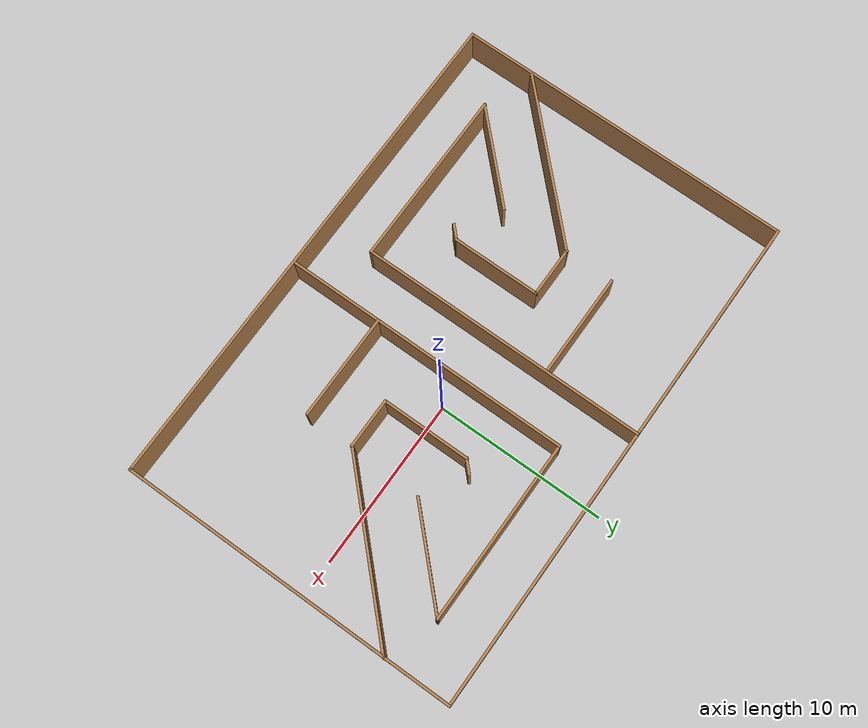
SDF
<?xml version='1.0'?>
<sdf version='1.6'>
  <model name='office_maze'>
    <pose frame=''>-2.7374 -0.716491 0 0 -0 0</pose>
    <link name='Wall_2'>
      <collision name='Wall_2_Collision'>
        <geometry>
          <box>
            <size>30 0.15 2.5</size>
          </box>
        </geometry>
        <pose frame=''>0 0 1.25 0 -0 0</pose>
      </collision>
      <visual name='Wall_2_Visual'>
        <pose frame=''>0 0 1.25 0 -0 0</pose>
        <geometry>
          <box>
            <size>30 0.15 2.5</size>
          </box>
        </geometry>
        <material>
          <script>
            <uri>file://media/materials/scripts/gazebo.material</uri>
            <name>Gazebo/Wood</name>
          </script>
          <ambient>1 1 1 1</ambient>
        </material>
      </visual>
      <pose frame=''>-0.01144 9.925 0 0 -0 0</pose>
    </link>
    <link name='Wall_24'>
      <collision name='Wall_24_Collision'>
        <geometry>
          <box>
            <size>17 0.15 2.5</size>
          </box>
        </geometry>
        <pose frame=''>0 0 1.25 0 -0 0</pose>
      </collision>
      <visual name='Wall_24_Visual'>
        <pose frame=''>0 0 1.25 0 -0 0</pose>
        <geometry>
          <box>
            <size>17 0.15 2.5</size>
          </box>
        </geometry>
        <material>
          <script>
            <uri>file://media/materials/scripts/gazebo.material</uri>
            <name>Gazebo/Wood</name>
          </script>
          <ambient>1 1 1 1</ambient>
        </material>
      </visual>
      <pose frame=''>1.30871 -1.38174 0 0 0 -1.5708</pose>
    </link>
    <link name='Wall_26'>
      <collision name='Wall_26_Collision'>
        <geometry>
          <box>
            <size>17 0.15 2.5</size>
          </box>
        </geometry>
        <pose frame=''>0 0 1.25 0 -0 0</pose>
      </collision>
      <visual name='Wall_26_Visual'>
        <pose frame=''>0 0 1.25 0 -0 0</pose>
        <geometry>
          <box>
            <size>17 0.15 2.5</size>
          </box>
        </geometry>
        <material>
          <script>
            <uri>file://media/materials/scripts/gazebo.material</uri>
            <name>Gazebo/Wood</name>
          </script>
          <ambient>1 1 1 1</ambient>
        </material>
      </visual>
      <pose frame=''>-1.5178 1.48266 0 0 0 -1.5708</pose>
    </link>
    <link name='Wall_27'>
      <collision name='Wall_27_Collision'>
        <geometry>
          <box>
            <size>10.5 0.15 2.5</size>
          </box>
        </geometry>
        <pose frame=''>0 0 1.25 0 -0 0</pose>
      </collision>
      <visual name='Wall_27_Visual'>
        <pose frame=''>0 0 1.25 0 -0 0</pose>
        <geometry>
          <box>
            <size>10.5 0.15 2.5</size>
          </box>
        </geometry>
        <material>
          <script>
            <uri>file://media/materials/scripts/gazebo.material</uri>
            <name>Gazebo/Wood</name>
          </script>
          <ambient>1 1 1 1</ambient>
        </material>
      </visual>
      <pose frame=''>-6.6928 -6.94234 0 0 -0 3.14159</pose>
    </link>
    <link name='Wall_29'>
      <collision name='Wall_29_Collision'>
        <geometry>
          <box>
            <size>10.75 0.15 2.5</size>
          </box>
        </geometry>
        <pose frame=''>0 0 1.25 0 -0 0</pose>
      </collision>
      <visual name='Wall_29_Visual'>
        <pose frame=''>0 0 1.25 0 -0 0</pose>
        <geometry>
          <box>
            <size>10.75 0.15 2.5</size>
          </box>
        </geometry>
        <material>
          <script>
            <uri>file://media/materials/scripts/gazebo.material</uri>
            <name>Gazebo/Wood</name>
          </script>
          <ambient>1 1 1 1</ambient>
        </material>
      </visual>
      <pose frame=''>6.60871 7.04326 0 0 -0 0</pose>
    </link>
    <link name='Wall_3'>
      <collision name='Wall_3_Collision'>
        <geometry>
          <box>
            <size>20 0.15 2.5</size>
          </box>
        </geometry>
        <pose frame=''>0 0 1.25 0 -0 0</pose>
      </collision>
      <visual name='Wall_3_Visual'>
        <pose frame=''>0 0 1.25 0 -0 0</pose>
        <geometry>
          <box>
            <size>20 0.15 2.5</size>
          </box>
        </geometry>
        <material>
          <script>
            <uri>file://media/materials/scripts/gazebo.material</uri>
            <name>Gazebo/Wood</name>
          </script>
          <ambient>1 1 1 1</ambient>
        </material>
      </visual>
      <pose frame=''>14.9136 0 0 0 0 -1.5708</pose>
    </link>
    <link name='Wall_4'>
      <collision name='Wall_4_Collision'>
        <geometry>
          <box>
            <size>30 0.15 2.5</size>
          </box>
        </geometry>
        <pose frame=''>0 0 1.25 0 -0 0</pose>
      </collision>
      <visual name='Wall_4_Visual'>
        <pose frame=''>0 0 1.25 0 -0 0</pose>
        <geometry>
          <box>
            <size>30 0.15 2.5</size>
          </box>
        </geometry>
        <material>
          <script>
            <uri>file://media/materials/scripts/gazebo.material</uri>
            <name>Gazebo/Wood</name>
          </script>
          <ambient>1 1 1 1</ambient>
        </material>
      </visual>
      <pose frame=''>-0.01144 -9.925 0 0 -0 3.14159</pose>
    </link>
    <link name='Wall_41'>
      <collision name='Wall_41_Collision'>
        <geometry>
          <box>
            <size>6.25 0.15 2.5</size>
          </box>
        </geometry>
        <pose frame=''>0 0 1.25 0 -0 0</pose>
      </collision>
      <visual name='Wall_41_Visual'>
        <pose frame=''>0 0 1.25 0 -0 0</pose>
        <geometry>
          <box>
            <size>6.25 0.15 2.5</size>
          </box>
        </geometry>
        <material>
          <script>
            <uri>file://media/materials/scripts/gazebo.material</uri>
            <name>Gazebo/Wood</name>
          </script>
          <ambient>1 1 1 1</ambient>
        </material>
      </visual>
      <pose frame=''>-9.71112 -4.78567 0 0 -0 0.785398</pose>
    </link>
    <link name='Wall_44'>
      <collision name='Wall_44_Collision'>
        <geometry>
          <box>
            <size>10.5 0.15 2.5</size>
          </box>
        </geometry>
        <pose frame=''>0 0 1.25 0 -0 0</pose>
      </collision>
      <visual name='Wall_44_Visual'>
        <pose frame=''>0 0 1.25 0 -0 0</pose>
        <geometry>
          <box>
            <size>10.5 0.15 2.5</size>
          </box>
        </geometry>
        <material>
          <script>
            <uri>file://media/materials/scripts/gazebo.material</uri>
            <name>Gazebo/Wood</name>
          </script>
          <ambient>1 1 1 1</ambient>
        </material>
      </visual>
      <pose frame=''>-11.1784 -2.2224 0 0 -0 0.785398</pose>
    </link>
    <link name='Wall_46'>
      <collision name='Wall_46_Collision'>
        <geometry>
          <box>
            <size>3 0.15 2.5</size>
          </box>
        </geometry>
        <pose frame=''>0 0 1.25 0 -0 0</pose>
      </collision>
      <visual name='Wall_46_Visual'>
        <pose frame=''>0 0 1.25 0 -0 0</pose>
        <geometry>
          <box>
            <size>3 0.15 2.5</size>
          </box>
        </geometry>
        <material>
          <script>
            <uri>file://media/materials/scripts/gazebo.material</uri>
            <name>Gazebo/Wood</name>
          </script>
          <ambient>1 1 1 1</ambient>
        </material>
      </visual>
      <pose frame=''>-6.09409 1.43687 0 0 -0 0</pose>
    </link>
    <link name='Wall_47'>
      <collision name='Wall_47_Collision'>
        <geometry>
          <box>
            <size>5.25 0.15 2.5</size>
          </box>
        </geometry>
        <pose frame=''>0 0 1.25 0 -0 0</pose>
      </collision>
      <visual name='Wall_47_Visual'>
        <pose frame=''>0 0 1.25 0 -0 0</pose>
        <geometry>
          <box>
            <size>5.25 0.15 2.5</size>
          </box>
        </geometry>
        <material>
          <script>
            <uri>file://media/materials/scripts/gazebo.material</uri>
            <name>Gazebo/Wood</name>
          </script>
          <ambient>1 1 1 1</ambient>
        </material>
      </visual>
      <pose frame=''>-4.66909 -1.11313 0 0 0 -1.5708</pose>
    </link>
    <link name='Wall_5'>
      <collision name='Wall_5_Collision'>
        <geometry>
          <box>
            <size>20 0.15 2.5</size>
          </box>
        </geometry>
        <pose frame=''>0 0 1.25 0 -0 0</pose>
      </collision>
      <visual name='Wall_5_Visual'>
        <pose frame=''>0 0 1.25 0 -0 0</pose>
        <geometry>
          <box>
            <size>20 0.15 2.5</size>
          </box>
        </geometry>
        <material>
          <script>
            <uri>file://media/materials/scripts/gazebo.material</uri>
            <name>Gazebo/Wood</name>
          </script>
          <ambient>1 1 1 1</ambient>
        </material>
      </visual>
      <pose frame=''>-14.9364 0 0 0 -0 1.5708</pose>
    </link>
    <link name='Wall_52'>
      <collision name='Wall_52_Collision'>
        <geometry>
          <box>
            <size>1 0.15 2.5</size>
          </box>
        </geometry>
        <pose frame=''>0 0 1.25 0 -0 0</pose>
      </collision>
      <visual name='Wall_52_Visual'>
        <pose frame=''>0 0 1.25 0 -0 0</pose>
        <geometry>
          <box>
            <size>1 0.15 2.5</size>
          </box>
        </geometry>
        <material>
          <script>
            <uri>file://media/materials/scripts/gazebo.material</uri>
            <name>Gazebo/Wood</name>
          </script>
          <ambient>1 1 1 1</ambient>
        </material>
      </visual>
      <pose frame=''>-4.96961 -3.96365 0 0 0 -2.35619</pose>
    </link>
    <link name='Wall_58'>
      <collision name='Wall_58_Collision'>
        <geometry>
          <box>
            <size>6 0.15 2.5</size>
          </box>
        </geometry>
        <pose frame=''>0 0 1.25 0 -0 0</pose>
      </collision>
      <visual name='Wall_58_Visual'>
        <pose frame=''>0 0 1.25 0 -0 0</pose>
        <geometry>
          <box>
            <size>6 0.15 2.5</size>
          </box>
        </geometry>
        <material>
          <script>
            <uri>file://media/materials/scripts/gazebo.material</uri>
            <name>Gazebo/Wood</name>
          </script>
          <ambient>1 1 1 1</ambient>
        </material>
      </visual>
      <pose frame=''>-4.59409 4.28687 0 0 -0 0</pose>
    </link>
    <link name='Wall_61'>
      <collision name='Wall_61_Collision'>
        <geometry>
          <box>
            <size>6.25 0.15 2.5</size>
          </box>
        </geometry>
        <pose frame=''>0 0 1.25 0 -0 0</pose>
      </collision>
      <visual name='Wall_61_Visual'>
        <pose frame=''>0 0 1.25 0 -0 0</pose>
        <geometry>
          <box>
            <size>6.25 0.15 2.5</size>
          </box>
        </geometry>
        <material>
          <script>
            <uri>file://media/materials/scripts/gazebo.material</uri>
            <name>Gazebo/Wood</name>
          </script>
          <ambient>1 1 1 1</ambient>
        </material>
      </visual>
      <pose frame=''>9.75204 4.88659 0 0 0 -2.35619</pose>
    </link>
    <link name='Wall_65'>
      <collision name='Wall_65_Collision'>
        <geometry>
          <box>
            <size>10.75 0.15 2.5</size>
          </box>
        </geometry>
        <pose frame=''>0 0 1.25 0 -0 0</pose>
      </collision>
      <visual name='Wall_65_Visual'>
        <pose frame=''>0 0 1.25 0 -0 0</pose>
        <geometry>
          <box>
            <size>10.75 0.15 2.5</size>
          </box>
        </geometry>
        <material>
          <script>
            <uri>file://media/materials/scripts/gazebo.material</uri>
            <name>Gazebo/Wood</name>
          </script>
          <ambient>1 1 1 1</ambient>
        </material>
      </visual>
      <pose frame=''>11.1577 2.20911 0 0 0 -2.35619</pose>
    </link>
    <link name='Wall_67'>
      <collision name='Wall_67_Collision'>
        <geometry>
          <box>
            <size>3 0.15 2.5</size>
          </box>
        </geometry>
        <pose frame=''>0 0 1.25 0 -0 0</pose>
      </collision>
      <visual name='Wall_67_Visual'>
        <pose frame=''>0 0 1.25 0 -0 0</pose>
        <geometry>
          <box>
            <size>3 0.15 2.5</size>
          </box>
        </geometry>
        <material>
          <script>
            <uri>file://media/materials/scripts/gazebo.material</uri>
            <name>Gazebo/Wood</name>
          </script>
          <ambient>1 1 1 1</ambient>
        </material>
      </visual>
      <pose frame=''>5.98504 -1.53855 0 0 -0 3.14159</pose>
    </link>
    <link name='Wall_68'>
      <collision name='Wall_68_Collision'>
        <geometry>
          <box>
            <size>5.25 0.15 2.5</size>
          </box>
        </geometry>
        <pose frame=''>0 0 1.25 0 -0 0</pose>
      </collision>
      <visual name='Wall_68_Visual'>
        <pose frame=''>0 0 1.25 0 -0 0</pose>
        <geometry>
          <box>
            <size>5.25 0.15 2.5</size>
          </box>
        </geometry>
        <material>
          <script>
            <uri>file://media/materials/scripts/gazebo.material</uri>
            <name>Gazebo/Wood</name>
          </script>
          <ambient>1 1 1 1</ambient>
        </material>
      </visual>
      <pose frame=''>4.56004 1.01145 0 0 -0 1.5708</pose>
    </link>
    <link name='Wall_69'>
      <collision name='Wall_69_Collision'>
        <geometry>
          <box>
            <size>1 0.15 2.5</size>
          </box>
        </geometry>
        <pose frame=''>0 0 1.25 0 -0 0</pose>
      </collision>
      <visual name='Wall_69_Visual'>
        <pose frame=''>0 0 1.25 0 -0 0</pose>
        <geometry>
          <box>
            <size>1 0.15 2.5</size>
          </box>
        </geometry>
        <material>
          <script>
            <uri>file://media/materials/scripts/gazebo.material</uri>
            <name>Gazebo/Wood</name>
          </script>
          <ambient>1 1 1 1</ambient>
        </material>
      </visual>
      <pose frame=''>4.86056 3.86197 0 0 -0 0.785398</pose>
    </link>
    <link name='Wall_73'>
      <collision name='Wall_73_Collision'>
        <geometry>
          <box>
            <size>6.25 0.15 2.5</size>
          </box>
        </geometry>
        <pose frame=''>0 0 1.25 0 -0 0</pose>
      </collision>
      <visual name='Wall_73_Visual'>
        <pose frame=''>0 0 1.25 0 -0 0</pose>
        <geometry>
          <box>
            <size>6.25 0.15 2.5</size>
          </box>
        </geometry>
        <material>
          <script>
            <uri>file://media/materials/scripts/gazebo.material</uri>
            <name>Gazebo/Wood</name>
          </script>
          <ambient>1 1 1 1</ambient>
        </material>
      </visual>
      <pose frame=''>4.36004 -4.38855 0 0 -0 3.14159</pose>
    </link>
    <static>1</static>
  </model>
</sdf>
